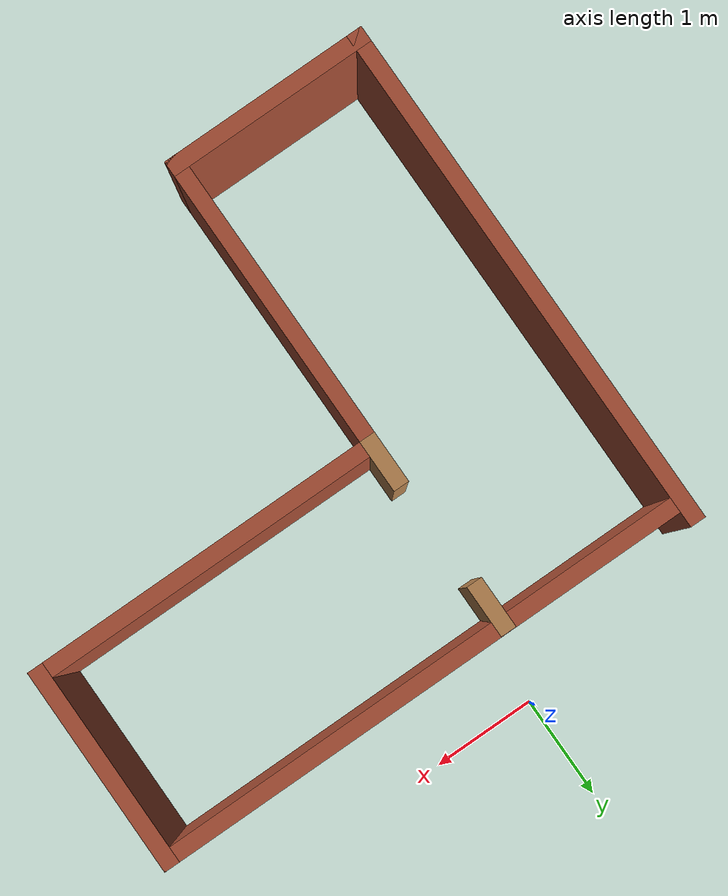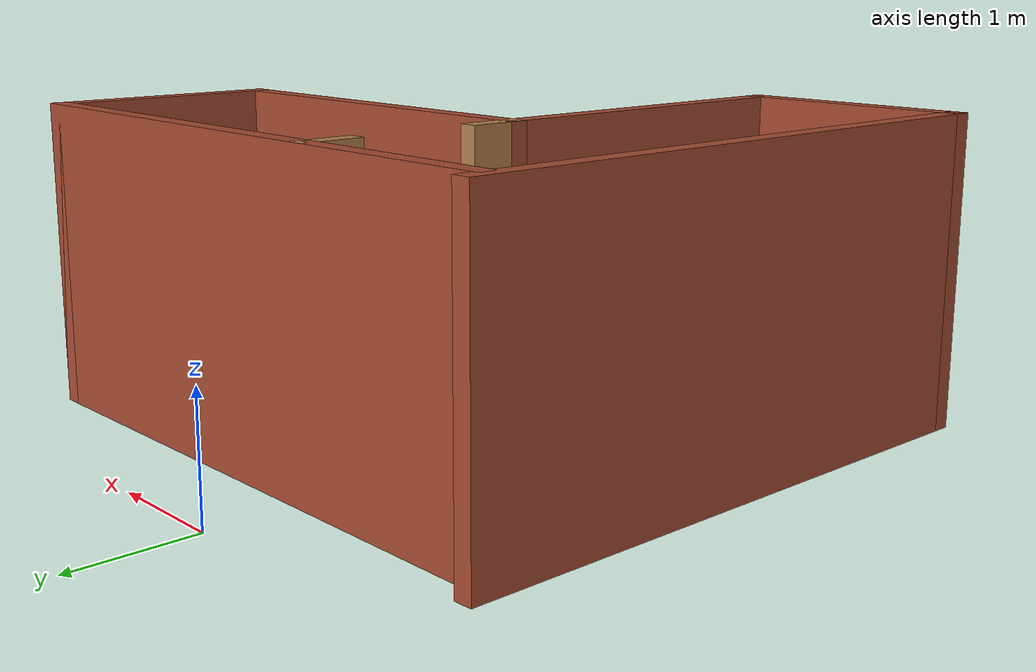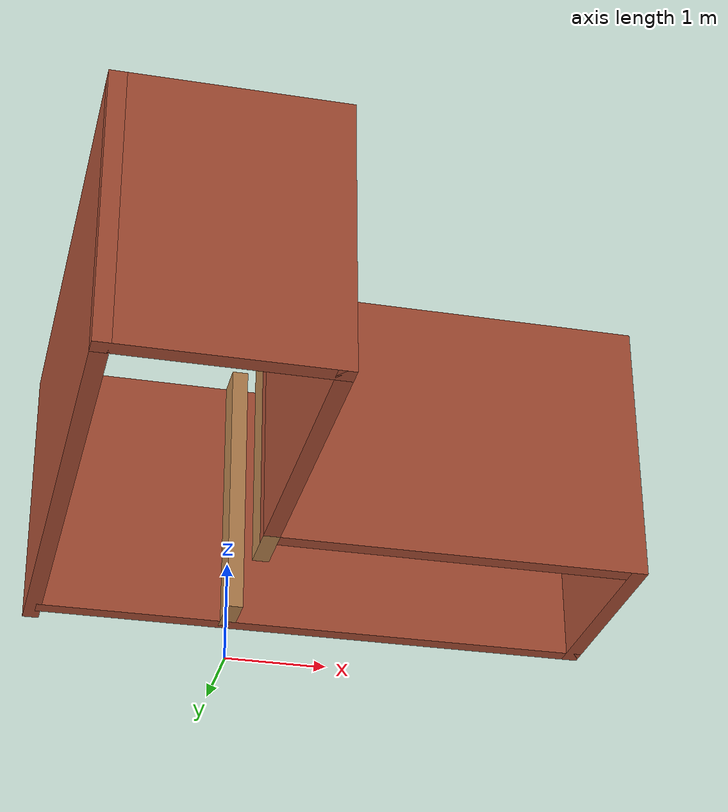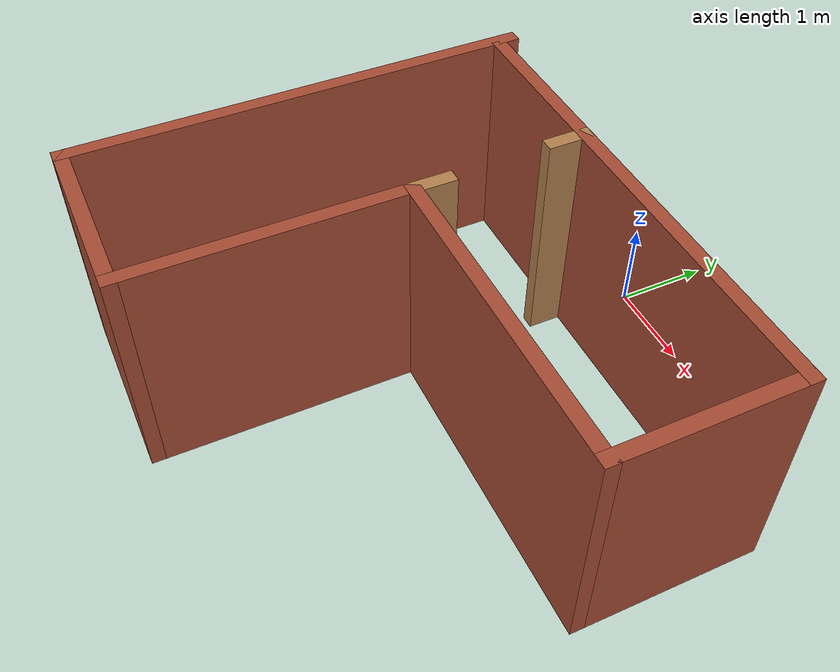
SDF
<?xml version='1.0'?>
<sdf version='1.7'>
  <model name='wall4_new'>
    <pose>0.66 -2.7775 0 0 -0 0</pose>
    <link name='Wall_11'>
      <collision name='Wall_11_Collision'>
        <geometry>
          <box>
            <size>0.5 0.15 2.5</size>
          </box>
        </geometry>
        <pose>0 0 1.25 0 -0 0</pose>
      </collision>
      <visual name='Wall_11_Visual'>
        <pose>0 0 1.25 0 -0 0</pose>
        <geometry>
          <box>
            <size>0.5 0.15 2.5</size>
          </box>
        </geometry>
        <material>
          <script>
            <uri>file://media/materials/scripts/gazebo.material</uri>
            <name>Gazebo/Wood</name>
          </script>
          <ambient>1 1 1 1</ambient>
        </material>
        <meta>
          <layer>0</layer>
        </meta>
      </visual>
      <pose>-0.75 0.3225 0 0 -0 1.5708</pose>
    </link>
    <link name='Wall_2'>
      <collision name='Wall_2_Collision'>
        <geometry>
          <box>
            <size>5.25 0.15 2.5</size>
          </box>
        </geometry>
        <pose>0 0 1.25 0 -0 0</pose>
      </collision>
      <visual name='Wall_2_Visual'>
        <pose>0 0 1.25 0 -0 0</pose>
        <geometry>
          <box>
            <size>5.25 0.15 2.5</size>
          </box>
        </geometry>
        <material>
          <script>
            <uri>file://media/materials/scripts/gazebo.material</uri>
            <name>Gazebo/Bricks</name>
          </script>
          <ambient>1 1 1 1</ambient>
        </material>
        <meta>
          <layer>0</layer>
        </meta>
      </visual>
      <pose>0.05 1.9975 0 0 -0 0</pose>
    </link>
    <link name='Wall_3'>
      <collision name='Wall_3_Collision'>
        <geometry>
          <box>
            <size>2 0.15 2.5</size>
          </box>
        </geometry>
        <pose>0 0 1.25 0 -0 0</pose>
      </collision>
      <visual name='Wall_3_Visual'>
        <pose>0 0 1.25 0 -0 0</pose>
        <geometry>
          <box>
            <size>2 0.15 2.5</size>
          </box>
        </geometry>
        <material>
          <script>
            <uri>file://media/materials/scripts/gazebo.material</uri>
            <name>Gazebo/Bricks</name>
          </script>
          <ambient>1 1 1 1</ambient>
        </material>
        <meta>
          <layer>0</layer>
        </meta>
      </visual>
      <pose>2.6 1.0725 0 0 -0 -1.5708</pose>
    </link>
    <link name='Wall_4'>
      <collision name='Wall_4_Collision'>
        <geometry>
          <box>
            <size>3.5 0.15 2.5</size>
          </box>
        </geometry>
        <pose>0 0 1.25 0 -0 0</pose>
      </collision>
      <visual name='Wall_4_Visual'>
        <pose>0 0 1.25 0 -0 0</pose>
        <geometry>
          <box>
            <size>3.5 0.15 2.5</size>
          </box>
        </geometry>
        <material>
          <script>
            <uri>file://media/materials/scripts/gazebo.material</uri>
            <name>Gazebo/Bricks</name>
          </script>
          <ambient>1 1 1 1</ambient>
        </material>
        <meta>
          <layer>0</layer>
        </meta>
      </visual>
      <pose>0.925 0.1475 0 0 -0 3.14159</pose>
    </link>
    <link name='Wall_5'>
      <collision name='Wall_5_Collision'>
        <geometry>
          <box>
            <size>3 0.15 2.5</size>
          </box>
        </geometry>
        <pose>0 0 1.25 0 -0 0</pose>
      </collision>
      <visual name='Wall_5_Visual'>
        <pose>0 0 1.25 0 -0 0</pose>
        <geometry>
          <box>
            <size>3 0.15 2.5</size>
          </box>
        </geometry>
        <material>
          <script>
            <uri>file://media/materials/scripts/gazebo.material</uri>
            <name>Gazebo/Bricks</name>
          </script>
          <ambient>1 1 1 1</ambient>
        </material>
        <meta>
          <layer>0</layer>
        </meta>
      </visual>
      <pose>-0.75 -1.2775 0 0 -0 -1.5708</pose>
    </link>
    <link name='Wall_6'>
      <collision name='Wall_6_Collision'>
        <geometry>
          <box>
            <size>2 0.15 2.5</size>
          </box>
        </geometry>
        <pose>0 0 1.25 0 -0 0</pose>
      </collision>
      <visual name='Wall_6_Visual'>
        <pose>0 0 1.25 0 -0 0</pose>
        <geometry>
          <box>
            <size>2 0.15 2.5</size>
          </box>
        </geometry>
        <material>
          <script>
            <uri>file://media/materials/scripts/gazebo.material</uri>
            <name>Gazebo/Bricks</name>
          </script>
          <ambient>1 1 1 1</ambient>
        </material>
        <meta>
          <layer>0</layer>
        </meta>
      </visual>
      <pose>-1.675 -2.7025 0 0 -0 3.14159</pose>
    </link>
    <link name='Wall_7'>
      <collision name='Wall_7_Collision'>
        <geometry>
          <box>
            <size>5 0.15 2.5</size>
          </box>
        </geometry>
        <pose>0 0 1.25 0 -0 0</pose>
      </collision>
      <visual name='Wall_7_Visual'>
        <pose>0 0 1.25 0 -0 0</pose>
        <geometry>
          <box>
            <size>5 0.15 2.5</size>
          </box>
        </geometry>
        <material>
          <script>
            <uri>file://media/materials/scripts/gazebo.material</uri>
            <name>Gazebo/Bricks</name>
          </script>
          <ambient>1 1 1 1</ambient>
        </material>
        <meta>
          <layer>0</layer>
        </meta>
      </visual>
      <pose>-2.6 -0.2775 0 0 -0 1.5708</pose>
    </link>
    <link name='Wall_9'>
      <collision name='Wall_9_Collision'>
        <geometry>
          <box>
            <size>0.5 0.15 2.5</size>
          </box>
        </geometry>
        <pose>0 0 1.25 0 -0 0</pose>
      </collision>
      <visual name='Wall_9_Visual'>
        <pose>0 0 1.25 0 -0 0</pose>
        <geometry>
          <box>
            <size>0.5 0.15 2.5</size>
          </box>
        </geometry>
        <material>
          <script>
            <uri>file://media/materials/scripts/gazebo.material</uri>
            <name>Gazebo/Wood</name>
          </script>
          <ambient>1 1 1 1</ambient>
        </material>
        <meta>
          <layer>0</layer>
        </meta>
      </visual>
      <pose>-0.78978 1.81869 0 0 -0 -1.5708</pose>
    </link>
    <static>1</static>
  </model>
</sdf>
